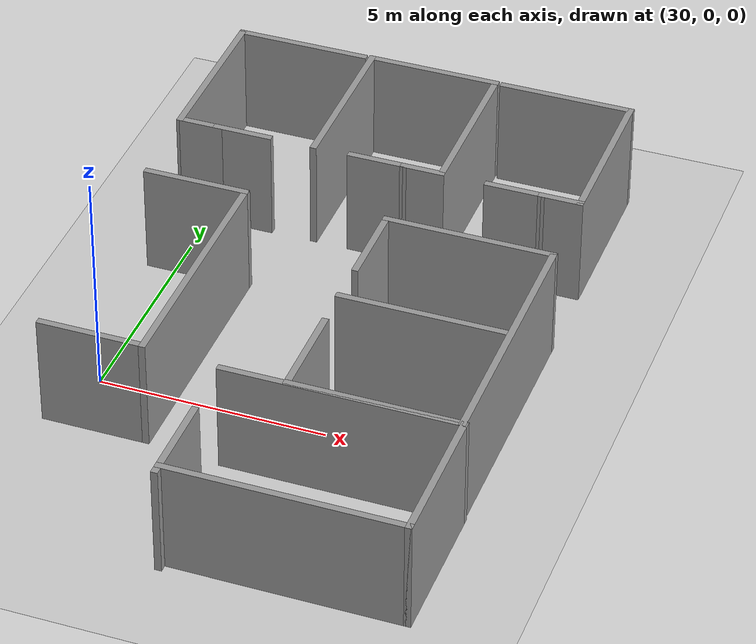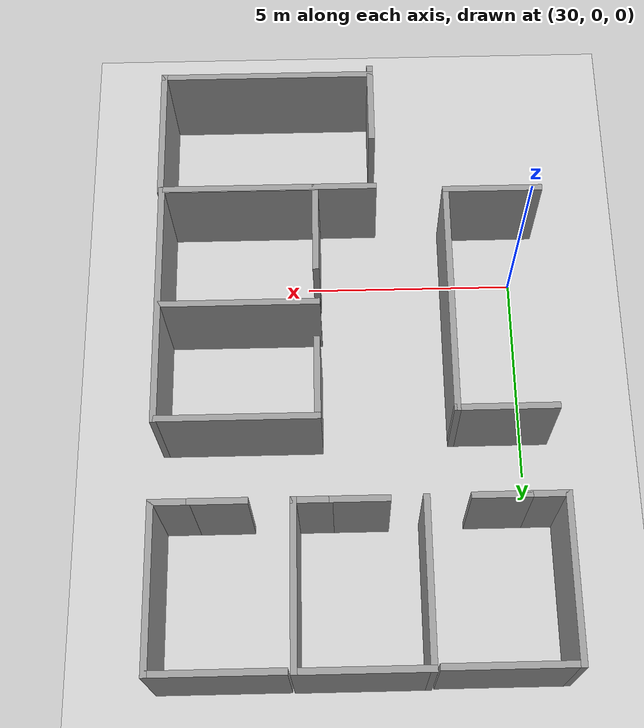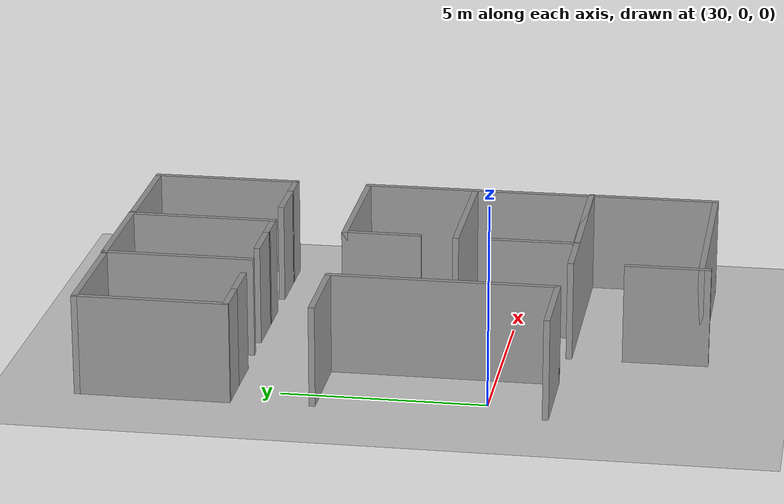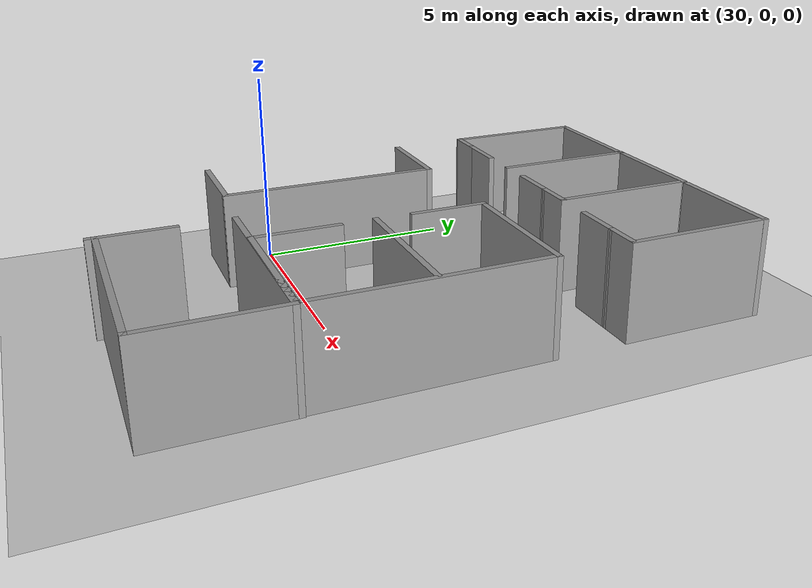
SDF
<sdf version="1.6">
 <world name="default">
  <model name="ground_plane">
   <static>1</static>
   <link name="link">
    <collision name="collision">
     <geometry><plane><normal>0 0 1</normal><size>100 100</size></plane></geometry>
     <surface><friction><ode><mu>100</mu><mu2>50</mu2></ode></friction></surface>
    </collision>
    <visual name="visual">
     <cast_shadows>0</cast_shadows>
     <geometry><plane><normal>0 0 1</normal><size>100 100</size></plane></geometry>
     <material>
      <script><uri>file://media/materials/scripts/gazebo.material</uri><name>Gazebo/Grey</name></script>
     </material>
    </visual>
   </link>
  </model>
  <model name="313-325_0_0">
   <link name="Wall_16">
    <pose>-1.44915 7.1e-05 0 0 0 -1.57088</pose>
    <visual name="Wall_16_Visual">
     <pose>0 0 1.25 0 -0 0</pose>
     <geometry><box><size>3.81 0.15 2.5</size></box></geometry>
     <material>
      <script><uri>file://media/materials/scripts/gazebo.material</uri><name>Gazebo/Grey</name></script>
      <ambient>1 1 1 1</ambient>
      <shader type="pixel"/>
     </material>
     <meta><layer>0</layer></meta>
    </visual>
    <collision name="Wall_16_Collision">
     <pose>0 0 1.25 0 -0 0</pose>
     <geometry><box><size>3.81 0.15 2.5</size></box></geometry>
     <surface>
      <friction>
       <ode><mu>1</mu><mu2>1</mu2><fdir1>0 0 0</fdir1><slip1>0</slip1><slip2>0</slip2></ode>
       <torsional>
        <coefficient>1</coefficient>
        <patch_radius>0</patch_radius>
        <surface_radius>0</surface_radius>
        <use_patch_radius>1</use_patch_radius>
        <ode><slip>0</slip></ode>
       </torsional>
      </friction>
      <bounce><restitution_coefficient>0</restitution_coefficient><threshold>1e+06</threshold></bounce>
      <contact>
       <collide_without_contact>0</collide_without_contact>
       <collide_without_contact_bitmask>1</collide_without_contact_bitmask>
       <collide_bitmask>1</collide_bitmask>
       <ode>
        <soft_cfm>0</soft_cfm>
        <soft_erp>0.2</soft_erp>
        <kp>1e+13</kp>
        <kd>1</kd>
        <max_vel>0.01</max_vel>
        <min_depth>0</min_depth>
       </ode>
       <bullet>
        <split_impulse>1</split_impulse>
        <split_impulse_penetration_threshold>-0.01</split_impulse_penetration_threshold>
        <soft_cfm>0</soft_cfm>
        <soft_erp>0.2</soft_erp>
        <kp>1e+13</kp>
        <kd>1</kd>
       </bullet>
      </contact>
     </surface>
    </collision>
   </link>
   <link name="Wall_18">
    <pose>1.449 -6.1e-05 0 0 -0 1.5708</pose>
    <visual name="Wall_18_Visual">
     <pose>0 0 1.25 0 -0 0</pose>
     <geometry><box><size>3.80974 0.15 2.5</size></box></geometry>
     <material>
      <script><uri>file://media/materials/scripts/gazebo.material</uri><name>Gazebo/Grey</name></script>
      <ambient>1 1 1 1</ambient>
      <shader type="pixel"/>
     </material>
     <meta><layer>0</layer></meta>
    </visual>
    <collision name="Wall_18_Collision">
     <pose>0 0 1.25 0 -0 0</pose>
     <geometry><box><size>3.80974 0.15 2.5</size></box></geometry>
     <surface>
      <friction>
       <ode><mu>1</mu><mu2>1</mu2><fdir1>0 0 0</fdir1><slip1>0</slip1><slip2>0</slip2></ode>
       <torsional>
        <coefficient>1</coefficient>
        <patch_radius>0</patch_radius>
        <surface_radius>0</surface_radius>
        <use_patch_radius>1</use_patch_radius>
        <ode><slip>0</slip></ode>
       </torsional>
      </friction>
      <bounce><restitution_coefficient>0</restitution_coefficient><threshold>1e+06</threshold></bounce>
      <contact>
       <collide_without_contact>0</collide_without_contact>
       <collide_without_contact_bitmask>1</collide_without_contact_bitmask>
       <collide_bitmask>1</collide_bitmask>
       <ode>
        <soft_cfm>0</soft_cfm>
        <soft_erp>0.2</soft_erp>
        <kp>1e+13</kp>
        <kd>1</kd>
        <max_vel>0.01</max_vel>
        <min_depth>0</min_depth>
       </ode>
       <bullet>
        <split_impulse>1</split_impulse>
        <split_impulse_penetration_threshold>-0.01</split_impulse_penetration_threshold>
        <soft_cfm>0</soft_cfm>
        <soft_erp>0.2</soft_erp>
        <kp>1e+13</kp>
        <kd>1</kd>
       </bullet>
      </contact>
     </surface>
    </collision>
   </link>
   <link name="Wall_19">
    <pose>2e-06 1.82994 0 0 -0 3.14159</pose>
    <visual name="Wall_19_Visual">
     <pose>0 0 1.25 0 -0 0</pose>
     <geometry><box><size>3.04862 0.15 2.5</size></box></geometry>
     <material>
      <script><uri>file://media/materials/scripts/gazebo.material</uri><name>Gazebo/Grey</name></script>
      <ambient>1 1 1 1</ambient>
      <shader type="pixel"/>
     </material>
     <meta><layer>0</layer></meta>
    </visual>
    <collision name="Wall_19_Collision">
     <pose>0 0 1.25 0 -0 0</pose>
     <geometry><box><size>3.04862 0.15 2.5</size></box></geometry>
     <surface>
      <friction>
       <ode><mu>1</mu><mu2>1</mu2><fdir1>0 0 0</fdir1><slip1>0</slip1><slip2>0</slip2></ode>
       <torsional>
        <coefficient>1</coefficient>
        <patch_radius>0</patch_radius>
        <surface_radius>0</surface_radius>
        <use_patch_radius>1</use_patch_radius>
        <ode><slip>0</slip></ode>
       </torsional>
      </friction>
      <bounce><restitution_coefficient>0</restitution_coefficient><threshold>1e+06</threshold></bounce>
      <contact>
       <collide_without_contact>0</collide_without_contact>
       <collide_without_contact_bitmask>1</collide_without_contact_bitmask>
       <collide_bitmask>1</collide_bitmask>
       <ode>
        <soft_cfm>0</soft_cfm>
        <soft_erp>0.2</soft_erp>
        <kp>1e+13</kp>
        <kd>1</kd>
        <max_vel>0.01</max_vel>
        <min_depth>0</min_depth>
       </ode>
       <bullet>
        <split_impulse>1</split_impulse>
        <split_impulse_penetration_threshold>-0.01</split_impulse_penetration_threshold>
        <soft_cfm>0</soft_cfm>
        <soft_erp>0.2</soft_erp>
        <kp>1e+13</kp>
        <kd>1</kd>
       </bullet>
      </contact>
     </surface>
    </collision>
   </link>
   <link name="Wall_22">
    <pose>-0.000153 -1.82993 0 0 0 -0.00022</pose>
    <visual name="Wall_22_Visual">
     <pose>0 0 1.25 0 -0 0</pose>
     <geometry><box><size>1.34831 0.15 2.5</size></box></geometry>
     <material>
      <script><uri>file://media/materials/scripts/gazebo.material</uri><name>Gazebo/Grey</name></script>
      <ambient>1 1 1 1</ambient>
      <shader type="pixel"/>
     </material>
     <meta><layer>0</layer></meta>
    </visual>
    <collision name="Wall_22_Collision">
     <pose>0 0 1.25 0 -0 0</pose>
     <geometry><box><size>1.34831 0.15 2.5</size></box></geometry>
     <surface>
      <friction>
       <ode><mu>1</mu><mu2>1</mu2><fdir1>0 0 0</fdir1><slip1>0</slip1><slip2>0</slip2></ode>
       <torsional>
        <coefficient>1</coefficient>
        <patch_radius>0</patch_radius>
        <surface_radius>0</surface_radius>
        <use_patch_radius>1</use_patch_radius>
        <ode><slip>0</slip></ode>
       </torsional>
      </friction>
      <bounce><restitution_coefficient>0</restitution_coefficient><threshold>1e+06</threshold></bounce>
      <contact>
       <collide_without_contact>0</collide_without_contact>
       <collide_without_contact_bitmask>1</collide_without_contact_bitmask>
       <collide_bitmask>1</collide_bitmask>
       <ode>
        <soft_cfm>0</soft_cfm>
        <soft_erp>0.2</soft_erp>
        <kp>1e+13</kp>
        <kd>1</kd>
        <max_vel>0.01</max_vel>
        <min_depth>0</min_depth>
       </ode>
       <bullet>
        <split_impulse>1</split_impulse>
        <split_impulse_penetration_threshold>-0.01</split_impulse_penetration_threshold>
        <soft_cfm>0</soft_cfm>
        <soft_erp>0.2</soft_erp>
        <kp>1e+13</kp>
        <kd>1</kd>
       </bullet>
      </contact>
     </surface>
    </collision>
   </link>
   <link name="Wall_23">
    <pose>1.024 -1.83006 0 0 -0 0</pose>
    <visual name="Wall_23_Visual">
     <pose>0 0 1.25 0 -0 0</pose>
     <geometry><box><size>1 0.15 2.5</size></box></geometry>
     <material>
      <script><uri>file://media/materials/scripts/gazebo.material</uri><name>Gazebo/Grey</name></script>
      <ambient>1 1 1 1</ambient>
      <shader type="pixel"/>
     </material>
     <meta><layer>0</layer></meta>
    </visual>
    <collision name="Wall_23_Collision">
     <pose>0 0 1.25 0 -0 0</pose>
     <geometry><box><size>1 0.15 2.5</size></box></geometry>
     <surface>
      <friction>
       <ode><mu>1</mu><mu2>1</mu2><fdir1>0 0 0</fdir1><slip1>0</slip1><slip2>0</slip2></ode>
       <torsional>
        <coefficient>1</coefficient>
        <patch_radius>0</patch_radius>
        <surface_radius>0</surface_radius>
        <use_patch_radius>1</use_patch_radius>
        <ode><slip>0</slip></ode>
       </torsional>
      </friction>
      <bounce><restitution_coefficient>0</restitution_coefficient><threshold>1e+06</threshold></bounce>
      <contact>
       <collide_without_contact>0</collide_without_contact>
       <collide_without_contact_bitmask>1</collide_without_contact_bitmask>
       <collide_bitmask>1</collide_bitmask>
       <ode>
        <soft_cfm>0</soft_cfm>
        <soft_erp>0.2</soft_erp>
        <kp>1e+13</kp>
        <kd>1</kd>
        <max_vel>0.01</max_vel>
        <min_depth>0</min_depth>
       </ode>
       <bullet>
        <split_impulse>1</split_impulse>
        <split_impulse_penetration_threshold>-0.01</split_impulse_penetration_threshold>
        <soft_cfm>0</soft_cfm>
        <soft_erp>0.2</soft_erp>
        <kp>1e+13</kp>
        <kd>1</kd>
       </bullet>
      </contact>
     </surface>
    </collision>
   </link>
   <static>1</static>
   <pose>33.8817 8.01736 0 0 -0 0</pose>
  </model>
  <model name="313-325_0">
   <link name="Wall_18">
    <pose>1.449 -6.1e-05 0 0 -0 1.5708</pose>
    <visual name="Wall_18_Visual">
     <pose>0 0 1.25 0 -0 0</pose>
     <geometry><box><size>3.80974 0.15 2.5</size></box></geometry>
     <material>
      <script><uri>file://media/materials/scripts/gazebo.material</uri><name>Gazebo/Grey</name></script>
      <ambient>1 1 1 1</ambient>
      <shader type="pixel"/>
     </material>
     <meta><layer>0</layer></meta>
    </visual>
    <collision name="Wall_18_Collision">
     <pose>0 0 1.25 0 -0 0</pose>
     <geometry><box><size>3.80974 0.15 2.5</size></box></geometry>
     <surface>
      <friction>
       <ode><mu>1</mu><mu2>1</mu2><fdir1>0 0 0</fdir1><slip1>0</slip1><slip2>0</slip2></ode>
       <torsional>
        <coefficient>1</coefficient>
        <patch_radius>0</patch_radius>
        <surface_radius>0</surface_radius>
        <use_patch_radius>1</use_patch_radius>
        <ode><slip>0</slip></ode>
       </torsional>
      </friction>
      <bounce><restitution_coefficient>0</restitution_coefficient><threshold>1e+06</threshold></bounce>
      <contact>
       <collide_without_contact>0</collide_without_contact>
       <collide_without_contact_bitmask>1</collide_without_contact_bitmask>
       <collide_bitmask>1</collide_bitmask>
       <ode>
        <soft_cfm>0</soft_cfm>
        <soft_erp>0.2</soft_erp>
        <kp>1e+13</kp>
        <kd>1</kd>
        <max_vel>0.01</max_vel>
        <min_depth>0</min_depth>
       </ode>
       <bullet>
        <split_impulse>1</split_impulse>
        <split_impulse_penetration_threshold>-0.01</split_impulse_penetration_threshold>
        <soft_cfm>0</soft_cfm>
        <soft_erp>0.2</soft_erp>
        <kp>1e+13</kp>
        <kd>1</kd>
       </bullet>
      </contact>
     </surface>
    </collision>
   </link>
   <link name="Wall_19">
    <pose>4e-06 1.82994 0 0 -0 3.14159</pose>
    <visual name="Wall_19_Visual">
     <pose>0 0 1.25 0 -0 0</pose>
     <geometry><box><size>3.04862 0.15 2.5</size></box></geometry>
     <material>
      <script><uri>file://media/materials/scripts/gazebo.material</uri><name>Gazebo/Grey</name></script>
      <ambient>1 1 1 1</ambient>
      <shader type="pixel"/>
     </material>
     <meta><layer>0</layer></meta>
    </visual>
    <collision name="Wall_19_Collision">
     <pose>0 0 1.25 0 -0 0</pose>
     <geometry><box><size>3.04862 0.15 2.5</size></box></geometry>
     <surface>
      <friction>
       <ode><mu>1</mu><mu2>1</mu2><fdir1>0 0 0</fdir1><slip1>0</slip1><slip2>0</slip2></ode>
       <torsional>
        <coefficient>1</coefficient>
        <patch_radius>0</patch_radius>
        <surface_radius>0</surface_radius>
        <use_patch_radius>1</use_patch_radius>
        <ode><slip>0</slip></ode>
       </torsional>
      </friction>
      <bounce><restitution_coefficient>0</restitution_coefficient><threshold>1e+06</threshold></bounce>
      <contact>
       <collide_without_contact>0</collide_without_contact>
       <collide_without_contact_bitmask>1</collide_without_contact_bitmask>
       <collide_bitmask>1</collide_bitmask>
       <ode>
        <soft_cfm>0</soft_cfm>
        <soft_erp>0.2</soft_erp>
        <kp>1e+13</kp>
        <kd>1</kd>
        <max_vel>0.01</max_vel>
        <min_depth>0</min_depth>
       </ode>
       <bullet>
        <split_impulse>1</split_impulse>
        <split_impulse_penetration_threshold>-0.01</split_impulse_penetration_threshold>
        <soft_cfm>0</soft_cfm>
        <soft_erp>0.2</soft_erp>
        <kp>1e+13</kp>
        <kd>1</kd>
       </bullet>
      </contact>
     </surface>
    </collision>
   </link>
   <link name="Wall_22">
    <pose>-0.000153 -1.82993 0 0 0 -0.00022</pose>
    <visual name="Wall_22_Visual">
     <pose>0 0 1.25 0 -0 0</pose>
     <geometry><box><size>1.34831 0.15 2.5</size></box></geometry>
     <material>
      <script><uri>file://media/materials/scripts/gazebo.material</uri><name>Gazebo/Grey</name></script>
      <ambient>1 1 1 1</ambient>
      <shader type="pixel"/>
     </material>
     <meta><layer>0</layer></meta>
    </visual>
    <collision name="Wall_22_Collision">
     <pose>0 0 1.25 0 -0 0</pose>
     <geometry><box><size>1.34831 0.15 2.5</size></box></geometry>
     <surface>
      <friction>
       <ode><mu>1</mu><mu2>1</mu2><fdir1>0 0 0</fdir1><slip1>0</slip1><slip2>0</slip2></ode>
       <torsional>
        <coefficient>1</coefficient>
        <patch_radius>0</patch_radius>
        <surface_radius>0</surface_radius>
        <use_patch_radius>1</use_patch_radius>
        <ode><slip>0</slip></ode>
       </torsional>
      </friction>
      <bounce><restitution_coefficient>0</restitution_coefficient><threshold>1e+06</threshold></bounce>
      <contact>
       <collide_without_contact>0</collide_without_contact>
       <collide_without_contact_bitmask>1</collide_without_contact_bitmask>
       <collide_bitmask>1</collide_bitmask>
       <ode>
        <soft_cfm>0</soft_cfm>
        <soft_erp>0.2</soft_erp>
        <kp>1e+13</kp>
        <kd>1</kd>
        <max_vel>0.01</max_vel>
        <min_depth>0</min_depth>
       </ode>
       <bullet>
        <split_impulse>1</split_impulse>
        <split_impulse_penetration_threshold>-0.01</split_impulse_penetration_threshold>
        <soft_cfm>0</soft_cfm>
        <soft_erp>0.2</soft_erp>
        <kp>1e+13</kp>
        <kd>1</kd>
       </bullet>
      </contact>
     </surface>
    </collision>
   </link>
   <link name="Wall_23">
    <pose>1.024 -1.83006 0 0 -0 0</pose>
    <visual name="Wall_23_Visual">
     <pose>0 0 1.25 0 -0 0</pose>
     <geometry><box><size>1 0.15 2.5</size></box></geometry>
     <material>
      <script><uri>file://media/materials/scripts/gazebo.material</uri><name>Gazebo/Grey</name></script>
      <ambient>1 1 1 1</ambient>
      <shader type="pixel"/>
     </material>
     <meta><layer>0</layer></meta>
    </visual>
    <collision name="Wall_23_Collision">
     <pose>0 0 1.25 0 -0 0</pose>
     <geometry><box><size>1 0.15 2.5</size></box></geometry>
     <surface>
      <friction>
       <ode><mu>1</mu><mu2>1</mu2><fdir1>0 0 0</fdir1><slip1>0</slip1><slip2>0</slip2></ode>
       <torsional>
        <coefficient>1</coefficient>
        <patch_radius>0</patch_radius>
        <surface_radius>0</surface_radius>
        <use_patch_radius>1</use_patch_radius>
        <ode><slip>0</slip></ode>
       </torsional>
      </friction>
      <bounce><restitution_coefficient>0</restitution_coefficient><threshold>1e+06</threshold></bounce>
      <contact>
       <collide_without_contact>0</collide_without_contact>
       <collide_without_contact_bitmask>1</collide_without_contact_bitmask>
       <collide_bitmask>1</collide_bitmask>
       <ode>
        <soft_cfm>0</soft_cfm>
        <soft_erp>0.2</soft_erp>
        <kp>1e+13</kp>
        <kd>1</kd>
        <max_vel>0.01</max_vel>
        <min_depth>0</min_depth>
       </ode>
       <bullet>
        <split_impulse>1</split_impulse>
        <split_impulse_penetration_threshold>-0.01</split_impulse_penetration_threshold>
        <soft_cfm>0</soft_cfm>
        <soft_erp>0.2</soft_erp>
        <kp>1e+13</kp>
        <kd>1</kd>
       </bullet>
      </contact>
     </surface>
    </collision>
   </link>
   <static>1</static>
   <pose>36.9768 8.00686 0 0 -0 0</pose>
  </model>
  <model name="313-325">
   <link name="Wall_16">
    <pose>-1.44915 7.1e-05 0 0 0 -1.57088</pose>
    <visual name="Wall_16_Visual">
     <pose>0 0 1.25 0 -0 0</pose>
     <geometry><box><size>3.81 0.15 2.5</size></box></geometry>
     <material>
      <script><uri>file://media/materials/scripts/gazebo.material</uri><name>Gazebo/Grey</name></script>
      <ambient>1 1 1 1</ambient>
      <shader type="pixel"/>
     </material>
     <meta><layer>0</layer></meta>
    </visual>
    <collision name="Wall_16_Collision">
     <pose>0 0 1.25 0 -0 0</pose>
     <geometry><box><size>3.81 0.15 2.5</size></box></geometry>
     <surface>
      <friction>
       <ode><mu>1</mu><mu2>1</mu2><fdir1>0 0 0</fdir1><slip1>0</slip1><slip2>0</slip2></ode>
       <torsional>
        <coefficient>1</coefficient>
        <patch_radius>0</patch_radius>
        <surface_radius>0</surface_radius>
        <use_patch_radius>1</use_patch_radius>
        <ode><slip>0</slip></ode>
       </torsional>
      </friction>
      <bounce><restitution_coefficient>0</restitution_coefficient><threshold>1e+06</threshold></bounce>
      <contact>
       <collide_without_contact>0</collide_without_contact>
       <collide_without_contact_bitmask>1</collide_without_contact_bitmask>
       <collide_bitmask>1</collide_bitmask>
       <ode>
        <soft_cfm>0</soft_cfm>
        <soft_erp>0.2</soft_erp>
        <kp>1e+13</kp>
        <kd>1</kd>
        <max_vel>0.01</max_vel>
        <min_depth>0</min_depth>
       </ode>
       <bullet>
        <split_impulse>1</split_impulse>
        <split_impulse_penetration_threshold>-0.01</split_impulse_penetration_threshold>
        <soft_cfm>0</soft_cfm>
        <soft_erp>0.2</soft_erp>
        <kp>1e+13</kp>
        <kd>1</kd>
       </bullet>
      </contact>
     </surface>
    </collision>
   </link>
   <link name="Wall_19">
    <pose>2e-06 1.82994 0 0 -0 3.14159</pose>
    <visual name="Wall_19_Visual">
     <pose>0 0 1.25 0 -0 0</pose>
     <geometry><box><size>3.04862 0.15 2.5</size></box></geometry>
     <material>
      <script><uri>file://media/materials/scripts/gazebo.material</uri><name>Gazebo/Grey</name></script>
      <ambient>1 1 1 1</ambient>
      <shader type="pixel"/>
     </material>
     <meta><layer>0</layer></meta>
    </visual>
    <collision name="Wall_19_Collision">
     <pose>0 0 1.25 0 -0 0</pose>
     <geometry><box><size>3.04862 0.15 2.5</size></box></geometry>
     <surface>
      <friction>
       <ode><mu>1</mu><mu2>1</mu2><fdir1>0 0 0</fdir1><slip1>0</slip1><slip2>0</slip2></ode>
       <torsional>
        <coefficient>1</coefficient>
        <patch_radius>0</patch_radius>
        <surface_radius>0</surface_radius>
        <use_patch_radius>1</use_patch_radius>
        <ode><slip>0</slip></ode>
       </torsional>
      </friction>
      <bounce><restitution_coefficient>0</restitution_coefficient><threshold>1e+06</threshold></bounce>
      <contact>
       <collide_without_contact>0</collide_without_contact>
       <collide_without_contact_bitmask>1</collide_without_contact_bitmask>
       <collide_bitmask>1</collide_bitmask>
       <ode>
        <soft_cfm>0</soft_cfm>
        <soft_erp>0.2</soft_erp>
        <kp>1e+13</kp>
        <kd>1</kd>
        <max_vel>0.01</max_vel>
        <min_depth>0</min_depth>
       </ode>
       <bullet>
        <split_impulse>1</split_impulse>
        <split_impulse_penetration_threshold>-0.01</split_impulse_penetration_threshold>
        <soft_cfm>0</soft_cfm>
        <soft_erp>0.2</soft_erp>
        <kp>1e+13</kp>
        <kd>1</kd>
       </bullet>
      </contact>
     </surface>
    </collision>
   </link>
   <link name="Wall_22">
    <pose>-0.000153 -1.82993 0 0 0 -0.00022</pose>
    <visual name="Wall_22_Visual">
     <pose>0 0 1.25 0 -0 0</pose>
     <geometry><box><size>1.34831 0.15 2.5</size></box></geometry>
     <material>
      <script><uri>file://media/materials/scripts/gazebo.material</uri><name>Gazebo/Grey</name></script>
      <ambient>1 1 1 1</ambient>
      <shader type="pixel"/>
     </material>
     <meta><layer>0</layer></meta>
    </visual>
    <collision name="Wall_22_Collision">
     <pose>0 0 1.25 0 -0 0</pose>
     <geometry><box><size>1.34831 0.15 2.5</size></box></geometry>
     <surface>
      <friction>
       <ode><mu>1</mu><mu2>1</mu2><fdir1>0 0 0</fdir1><slip1>0</slip1><slip2>0</slip2></ode>
       <torsional>
        <coefficient>1</coefficient>
        <patch_radius>0</patch_radius>
        <surface_radius>0</surface_radius>
        <use_patch_radius>1</use_patch_radius>
        <ode><slip>0</slip></ode>
       </torsional>
      </friction>
      <bounce><restitution_coefficient>0</restitution_coefficient><threshold>1e+06</threshold></bounce>
      <contact>
       <collide_without_contact>0</collide_without_contact>
       <collide_without_contact_bitmask>1</collide_without_contact_bitmask>
       <collide_bitmask>1</collide_bitmask>
       <ode>
        <soft_cfm>0</soft_cfm>
        <soft_erp>0.2</soft_erp>
        <kp>1e+13</kp>
        <kd>1</kd>
        <max_vel>0.01</max_vel>
        <min_depth>0</min_depth>
       </ode>
       <bullet>
        <split_impulse>1</split_impulse>
        <split_impulse_penetration_threshold>-0.01</split_impulse_penetration_threshold>
        <soft_cfm>0</soft_cfm>
        <soft_erp>0.2</soft_erp>
        <kp>1e+13</kp>
        <kd>1</kd>
       </bullet>
      </contact>
     </surface>
    </collision>
   </link>
   <link name="Wall_23">
    <pose>-0.957397 -1.83006 0 0 -0 0</pose>
    <visual name="Wall_23_Visual">
     <pose>0 0 1.25 0 -0 0</pose>
     <geometry><box><size>1 0.15 2.5</size></box></geometry>
     <material>
      <script><uri>file://media/materials/scripts/gazebo.material</uri><name>Gazebo/Grey</name></script>
      <ambient>1 1 1 1</ambient>
      <shader type="pixel"/>
     </material>
     <meta><layer>0</layer></meta>
    </visual>
    <collision name="Wall_23_Collision">
     <pose>0 0 1.25 0 -0 0</pose>
     <geometry><box><size>1 0.15 2.5</size></box></geometry>
     <surface>
      <friction>
       <ode><mu>1</mu><mu2>1</mu2><fdir1>0 0 0</fdir1><slip1>0</slip1><slip2>0</slip2></ode>
       <torsional>
        <coefficient>1</coefficient>
        <patch_radius>0</patch_radius>
        <surface_radius>0</surface_radius>
        <use_patch_radius>1</use_patch_radius>
        <ode><slip>0</slip></ode>
       </torsional>
      </friction>
      <bounce><restitution_coefficient>0</restitution_coefficient><threshold>1e+06</threshold></bounce>
      <contact>
       <collide_without_contact>0</collide_without_contact>
       <collide_without_contact_bitmask>1</collide_without_contact_bitmask>
       <collide_bitmask>1</collide_bitmask>
       <ode>
        <soft_cfm>0</soft_cfm>
        <soft_erp>0.2</soft_erp>
        <kp>1e+13</kp>
        <kd>1</kd>
        <max_vel>0.01</max_vel>
        <min_depth>0</min_depth>
       </ode>
       <bullet>
        <split_impulse>1</split_impulse>
        <split_impulse_penetration_threshold>-0.01</split_impulse_penetration_threshold>
        <soft_cfm>0</soft_cfm>
        <soft_erp>0.2</soft_erp>
        <kp>1e+13</kp>
        <kd>1</kd>
       </bullet>
      </contact>
     </surface>
    </collision>
   </link>
   <static>1</static>
   <pose>30.7901 7.99382 0 0 -0 0</pose>
  </model>
  <model name="526">
   <link name="Wall_29">
    <pose>0 -1.592 0 0 -0 0</pose>
    <visual name="Wall_29_Visual">
     <pose>0 0 1.25 0 -0 0</pose>
     <geometry><box><size>5.239 0.15 2.5</size></box></geometry>
     <material>
      <script><uri>file://media/materials/scripts/gazebo.material</uri><name>Gazebo/Grey</name></script>
      <ambient>1 1 1 1</ambient>
      <shader type="pixel"/>
     </material>
     <meta><layer>0</layer></meta>
    </visual>
    <collision name="Wall_29_Collision">
     <pose>0 0 1.25 0 -0 0</pose>
     <geometry><box><size>5.239 0.15 2.5</size></box></geometry>
     <surface>
      <friction>
       <ode><mu>1</mu><mu2>1</mu2><fdir1>0 0 0</fdir1><slip1>0</slip1><slip2>0</slip2></ode>
       <torsional>
        <coefficient>1</coefficient>
        <patch_radius>0</patch_radius>
        <surface_radius>0</surface_radius>
        <use_patch_radius>1</use_patch_radius>
        <ode><slip>0</slip></ode>
       </torsional>
      </friction>
      <bounce><restitution_coefficient>0</restitution_coefficient><threshold>1e+06</threshold></bounce>
      <contact>
       <collide_without_contact>0</collide_without_contact>
       <collide_without_contact_bitmask>1</collide_without_contact_bitmask>
       <collide_bitmask>1</collide_bitmask>
       <ode>
        <soft_cfm>0</soft_cfm>
        <soft_erp>0.2</soft_erp>
        <kp>1e+13</kp>
        <kd>1</kd>
        <max_vel>0.01</max_vel>
        <min_depth>0</min_depth>
       </ode>
       <bullet>
        <split_impulse>1</split_impulse>
        <split_impulse_penetration_threshold>-0.01</split_impulse_penetration_threshold>
        <soft_cfm>0</soft_cfm>
        <soft_erp>0.2</soft_erp>
        <kp>1e+13</kp>
        <kd>1</kd>
       </bullet>
      </contact>
     </surface>
    </collision>
   </link>
   <link name="Wall_30">
    <pose>2.5445 0 0 0 -0 1.5708</pose>
    <visual name="Wall_30_Visual">
     <pose>0 0 1.25 0 -0 0</pose>
     <geometry><box><size>3.334 0.15 2.5</size></box></geometry>
     <material>
      <script><uri>file://media/materials/scripts/gazebo.material</uri><name>Gazebo/Grey</name></script>
      <ambient>1 1 1 1</ambient>
      <shader type="pixel"/>
     </material>
     <meta><layer>0</layer></meta>
    </visual>
    <collision name="Wall_30_Collision">
     <pose>0 0 1.25 0 -0 0</pose>
     <geometry><box><size>3.334 0.15 2.5</size></box></geometry>
     <surface>
      <friction>
       <ode><mu>1</mu><mu2>1</mu2><fdir1>0 0 0</fdir1><slip1>0</slip1><slip2>0</slip2></ode>
       <torsional>
        <coefficient>1</coefficient>
        <patch_radius>0</patch_radius>
        <surface_radius>0</surface_radius>
        <use_patch_radius>1</use_patch_radius>
        <ode><slip>0</slip></ode>
       </torsional>
      </friction>
      <bounce><restitution_coefficient>0</restitution_coefficient><threshold>1e+06</threshold></bounce>
      <contact>
       <collide_without_contact>0</collide_without_contact>
       <collide_without_contact_bitmask>1</collide_without_contact_bitmask>
       <collide_bitmask>1</collide_bitmask>
       <ode>
        <soft_cfm>0</soft_cfm>
        <soft_erp>0.2</soft_erp>
        <kp>1e+13</kp>
        <kd>1</kd>
        <max_vel>0.01</max_vel>
        <min_depth>0</min_depth>
       </ode>
       <bullet>
        <split_impulse>1</split_impulse>
        <split_impulse_penetration_threshold>-0.01</split_impulse_penetration_threshold>
        <soft_cfm>0</soft_cfm>
        <soft_erp>0.2</soft_erp>
        <kp>1e+13</kp>
        <kd>1</kd>
       </bullet>
      </contact>
     </surface>
    </collision>
   </link>
   <link name="Wall_31">
    <pose>0 1.592 0 0 -0 3.14159</pose>
    <visual name="Wall_31_Visual">
     <pose>0 0 1.25 0 -0 0</pose>
     <geometry><box><size>5.239 0.15 2.5</size></box></geometry>
     <material>
      <script><uri>file://media/materials/scripts/gazebo.material</uri><name>Gazebo/Grey</name></script>
      <ambient>1 1 1 1</ambient>
      <shader type="pixel"/>
     </material>
     <meta><layer>0</layer></meta>
    </visual>
    <collision name="Wall_31_Collision">
     <pose>0 0 1.25 0 -0 0</pose>
     <geometry><box><size>5.239 0.15 2.5</size></box></geometry>
     <surface>
      <friction>
       <ode><mu>1</mu><mu2>1</mu2><fdir1>0 0 0</fdir1><slip1>0</slip1><slip2>0</slip2></ode>
       <torsional>
        <coefficient>1</coefficient>
        <patch_radius>0</patch_radius>
        <surface_radius>0</surface_radius>
        <use_patch_radius>1</use_patch_radius>
        <ode><slip>0</slip></ode>
       </torsional>
      </friction>
      <bounce><restitution_coefficient>0</restitution_coefficient><threshold>1e+06</threshold></bounce>
      <contact>
       <collide_without_contact>0</collide_without_contact>
       <collide_without_contact_bitmask>1</collide_without_contact_bitmask>
       <collide_bitmask>1</collide_bitmask>
       <ode>
        <soft_cfm>0</soft_cfm>
        <soft_erp>0.2</soft_erp>
        <kp>1e+13</kp>
        <kd>1</kd>
        <max_vel>0.01</max_vel>
        <min_depth>0</min_depth>
       </ode>
       <bullet>
        <split_impulse>1</split_impulse>
        <split_impulse_penetration_threshold>-0.01</split_impulse_penetration_threshold>
        <soft_cfm>0</soft_cfm>
        <soft_erp>0.2</soft_erp>
        <kp>1e+13</kp>
        <kd>1</kd>
       </bullet>
      </contact>
     </surface>
    </collision>
   </link>
   <link name="Wall_33">
    <pose>-2.5445 -0.772027 0 0 -0 1.5708</pose>
    <inertial>
     <inertia><ixx>0</ixx><ixy>0</ixy><ixz>0</ixz><iyy>0</iyy><iyz>0</iyz><izz>0</izz></inertia>
     <mass>0</mass>
    </inertial>
    <visual name="Wall_33_Visual">
     <pose>0 0 1.25 0 -0 0</pose>
     <geometry><box><size>2.10908 0.15 2.5</size></box></geometry>
     <material>
      <script><uri>file://media/materials/scripts/gazebo.material</uri><name>Gazebo/Grey</name></script>
      <ambient>1 1 1 1</ambient>
      <shader type="pixel"/>
     </material>
     <meta><layer>0</layer></meta>
    </visual>
    <collision name="Wall_33_Collision">
     <pose>0 0 1.25 0 -0 0</pose>
     <geometry><box><size>2.10908 0.15 2.5</size></box></geometry>
     <surface>
      <friction>
       <ode><mu>1</mu><mu2>1</mu2><fdir1>0 0 0</fdir1><slip1>0</slip1><slip2>0</slip2></ode>
       <torsional>
        <coefficient>1</coefficient>
        <patch_radius>0</patch_radius>
        <surface_radius>0</surface_radius>
        <use_patch_radius>1</use_patch_radius>
        <ode><slip>0</slip></ode>
       </torsional>
      </friction>
      <bounce><restitution_coefficient>0</restitution_coefficient><threshold>1e+06</threshold></bounce>
      <contact>
       <collide_without_contact>0</collide_without_contact>
       <collide_without_contact_bitmask>1</collide_without_contact_bitmask>
       <collide_bitmask>1</collide_bitmask>
       <ode>
        <soft_cfm>0</soft_cfm>
        <soft_erp>0.2</soft_erp>
        <kp>1e+13</kp>
        <kd>1</kd>
        <max_vel>0.01</max_vel>
        <min_depth>0</min_depth>
       </ode>
       <bullet>
        <split_impulse>1</split_impulse>
        <split_impulse_penetration_threshold>-0.01</split_impulse_penetration_threshold>
        <soft_cfm>0</soft_cfm>
        <soft_erp>0.2</soft_erp>
        <kp>1e+13</kp>
        <kd>1</kd>
       </bullet>
      </contact>
     </surface>
    </collision>
   </link>
   <static>1</static>
   <pose>35.9237 -3.16356 0 0 -0 0</pose>
  </model>
  <model name="527/528">
   <pose>36.5993 1.34886 0 0 -0 0</pose>
   <link name="Wall_35">
    <collision name="Wall_35_Collision">
     <geometry><box><size>3.81 0.15 2.5</size></box></geometry>
     <pose>0 0 1.25 0 -0 0</pose>
    </collision>
    <visual name="Wall_35_Visual">
     <pose>0 0 1.25 0 -0 0</pose>
     <geometry><box><size>3.81 0.15 2.5</size></box></geometry>
     <material>
      <script><uri>file://media/materials/scripts/gazebo.material</uri><name>Gazebo/Grey</name></script>
      <ambient>1 1 1 1</ambient>
     </material>
     <meta><layer>0</layer></meta>
    </visual>
    <pose>0.0065 -2.9015 0 0 -0 0</pose>
   </link>
   <link name="Wall_36">
    <collision name="Wall_36_Collision">
     <geometry><box><size>5.953 0.15 2.5</size></box></geometry>
     <pose>0 0 1.25 0 -0 0</pose>
    </collision>
    <visual name="Wall_36_Visual">
     <pose>0 0 1.25 0 -0 0</pose>
     <geometry><box><size>5.953 0.15 2.5</size></box></geometry>
     <material>
      <script><uri>file://media/materials/scripts/gazebo.material</uri><name>Gazebo/Grey</name></script>
      <ambient>1 1 1 1</ambient>
     </material>
     <meta><layer>0</layer></meta>
    </visual>
    <pose>1.8365 0 0 0 -0 1.5708</pose>
   </link>
   <link name="Wall_37">
    <collision name="Wall_37_Collision">
     <geometry><box><size>3.81 0.15 2.5</size></box></geometry>
     <pose>0 0 1.25 0 -0 0</pose>
    </collision>
    <visual name="Wall_37_Visual">
     <pose>0 0 1.25 0 -0 0</pose>
     <geometry><box><size>3.81 0.15 2.5</size></box></geometry>
     <material>
      <script><uri>file://media/materials/scripts/gazebo.material</uri><name>Gazebo/Grey</name></script>
      <ambient>1 1 1 1</ambient>
     </material>
     <meta><layer>0</layer></meta>
    </visual>
    <pose>0.0065 2.9015 0 0 -0 3.14159</pose>
   </link>
   <link name="Wall_40">
    <collision name="Wall_40_Collision">
     <geometry><box><size>3.75 0.15 2.5</size></box></geometry>
     <pose>0 0 1.25 0 -0 0</pose>
    </collision>
    <visual name="Wall_40_Visual">
     <pose>0 0 1.25 0 -0 0</pose>
     <geometry><box><size>3.75 0.15 2.5</size></box></geometry>
     <material>
      <script><uri>file://media/materials/scripts/gazebo.material</uri><name>Gazebo/Grey</name></script>
      <ambient>1 1 1 1</ambient>
     </material>
     <meta><layer>0</layer></meta>
    </visual>
    <pose>-0.0365 0.099032 0 0 -0 3.14159</pose>
   </link>
   <link name="Wall_42">
    <collision name="Wall_42_Collision">
     <geometry><box><size>2.25 0.15 2.5</size></box></geometry>
     <pose>0 0 1.25 0 -0 0</pose>
    </collision>
    <visual name="Wall_42_Visual">
     <pose>0 0 1.25 0 -0 0</pose>
     <geometry><box><size>2.25 0.15 2.5</size></box></geometry>
     <material>
      <script><uri>file://media/materials/scripts/gazebo.material</uri><name>Gazebo/Grey</name></script>
      <ambient>1 1 1 1</ambient>
     </material>
     <meta><layer>0</layer></meta>
    </visual>
    <pose>-1.8235 -1.8515 0 0 -0 1.5708</pose>
   </link>
   <link name="Wall_44">
    <collision name="Wall_44_Collision">
     <geometry><box><size>2.003 0.15 2.5</size></box></geometry>
     <pose>0 0 1.25 0 -0 0</pose>
    </collision>
    <visual name="Wall_44_Visual">
     <pose>0 0 1.25 0 -0 0</pose>
     <geometry><box><size>2.003 0.15 2.5</size></box></geometry>
     <material>
      <script><uri>file://media/materials/scripts/gazebo.material</uri><name>Gazebo/Grey</name></script>
      <ambient>1 1 1 1</ambient>
     </material>
     <meta><layer>0</layer></meta>
    </visual>
    <pose>-1.8235 1.975 0 0 -0 1.5708</pose>
   </link>
   <static>1</static>
  </model>
  <model name="532">
   <pose>30.5387 1.34318 0 0 -0 0</pose>
   <link name="Wall_46">
    <collision name="Wall_46_Collision">
     <geometry><box><size>2.381 0.15 2.5</size></box></geometry>
     <pose>0 0 1.25 0 -0 0</pose>
    </collision>
    <visual name="Wall_46_Visual">
     <pose>0 0 1.25 0 -0 0</pose>
     <geometry><box><size>2.381 0.15 2.5</size></box></geometry>
     <material>
      <script><uri>file://media/materials/scripts/gazebo.material</uri><name>Gazebo/Grey</name></script>
      <ambient>1 1 1 1</ambient>
     </material>
     <meta><layer>0</layer></meta>
    </visual>
    <pose>0 -2.7825 0 0 -0 0</pose>
   </link>
   <link name="Wall_47">
    <collision name="Wall_47_Collision">
     <geometry><box><size>5.715 0.15 2.5</size></box></geometry>
     <pose>0 0 1.25 0 -0 0</pose>
    </collision>
    <visual name="Wall_47_Visual">
     <pose>0 0 1.25 0 -0 0</pose>
     <geometry><box><size>5.715 0.15 2.5</size></box></geometry>
     <material>
      <script><uri>file://media/materials/scripts/gazebo.material</uri><name>Gazebo/Grey</name></script>
      <ambient>1 1 1 1</ambient>
     </material>
     <meta><layer>0</layer></meta>
    </visual>
    <pose>1.1155 0 0 0 -0 1.5708</pose>
   </link>
   <link name="Wall_48">
    <collision name="Wall_48_Collision">
     <geometry><box><size>2.381 0.15 2.5</size></box></geometry>
     <pose>0 0 1.25 0 -0 0</pose>
    </collision>
    <visual name="Wall_48_Visual">
     <pose>0 0 1.25 0 -0 0</pose>
     <geometry><box><size>2.381 0.15 2.5</size></box></geometry>
     <material>
      <script><uri>file://media/materials/scripts/gazebo.material</uri><name>Gazebo/Grey</name></script>
      <ambient>1 1 1 1</ambient>
     </material>
     <meta><layer>0</layer></meta>
    </visual>
    <pose>0 2.7825 0 0 -0 3.14159</pose>
   </link>
   <static>1</static>
  </model>
 </world>
</sdf>
